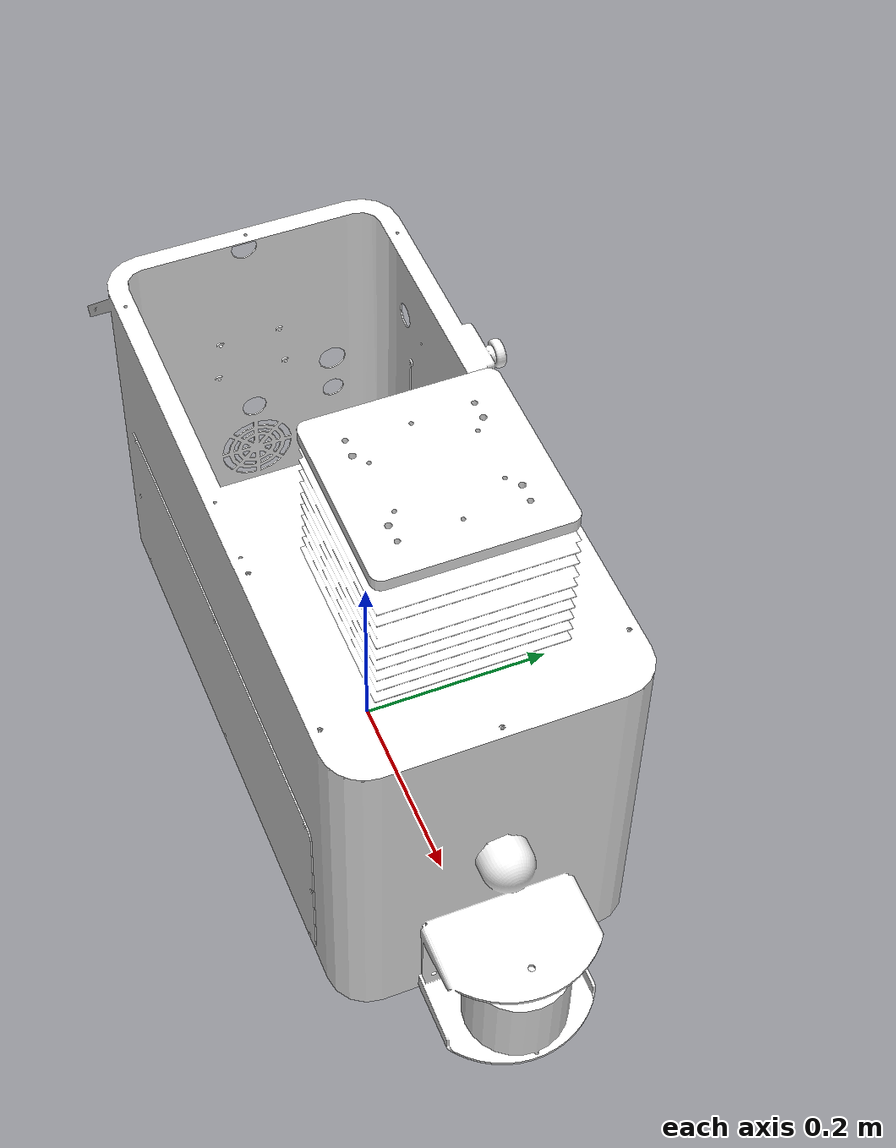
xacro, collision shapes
<?xml version="1.0" encoding="utf-8"?>
<robot name="ranger_xarm6_base" xmlns:xacro="http://ros.org/wiki/xacro">
  <link
    name="box_link">
    <inertial>
      <origin
        xyz="0.017247 -0.0057664 0.13638"
        rpy="0 0 0" />
      <mass
        value="2.1688" />
      <inertia
        ixx="0.019403"
        ixy="-1.1237E-05"
        ixz="-0.00039599"
        iyy="0.066236"
        iyz="5.3962E-07"
        izz="0.078079" />
    </inertial>
    <visual>
      <origin
        xyz="0 0 0"
        rpy="0 0 0" />
      <geometry>
        <mesh
          filename="package://ranger_xarm_base/meshes/box_link.STL" />
      </geometry>
      <material
        name="">
        <color
          rgba="1 1 1 1" />
      </material>
    </visual>
    <collision>
      <origin
        xyz="0.0 0 0"
        rpy="0 0 0" />
      <geometry>
        <mesh filename="package://ranger_xarm_base/meshes/box_link.STL" />
      </geometry>
    </collision>
  </link>
  <link
    name="laser_Link">
    <inertial>
      <origin
        xyz="-0.00029458 -1.102E-05 0.035775"
        rpy="0 0 0" />
      <mass
        value="0.58508" />
      <inertia
        ixx="0.00062907"
        ixy="-3.4247E-08"
        ixz="6.994E-08"
        iyy="0.00063026"
        iyz="-4.8147E-08"
        izz="0.00074925" />
    </inertial>
    <visual>
      <origin
        xyz="0 0 0"
        rpy="0 0 0" />
      <geometry>
        <mesh
          filename="package://ranger_xarm_base/meshes/laser_Link.STL" />
      </geometry>
      <material
        name="">
        <color
          rgba="1 1 1 1" />
      </material>
    </visual>
    <collision>
      <origin
        xyz="0 0 0.04"
        rpy="0 0 0" />
      <geometry>
        <cylinder length="0.09" radius="0.05"/>
      </geometry>
    </collision>
  </link>
  <joint
    name="laser_joint"
    type="fixed">
    <origin
      xyz="0.37655 2.1023E-05 0.02"
      rpy="0 0 0" />
    <parent
      link="box_link" />
    <child
      link="laser_Link" />
    <axis
      xyz="0 0 0" />
  </joint>

  <link
    name="lifting_link">
    <inertial>
      <origin
        xyz="0.17383 0.0039882 0.28986"
        rpy="0 0 0" />
      <mass
        value="4.4737" />
      <inertia
        ixx="0.05035"
        ixy="-3.7408E-07"
        ixz="-0.00011997"
        iyy="0.050518"
        iyz="-9.6114E-07"
        izz="0.023585" />
    </inertial>
    <visual>
      <origin
        xyz="-0.175 0 -0.025"
        rpy="0 0 0" />
      <geometry>
        <mesh
          filename="package://c1997/meshes/lifting_link.STL" />
      </geometry>
      <material
        name="">
        <color
          rgba="1 1 1 1" />
      </material>
    </visual>
    <collision>
      <origin
        xyz="-0.175 0 -0.025"
        rpy="0 0 0" />
      <geometry>
        <mesh
          filename="package://c1997/meshes/lifting_link.STL" />
      </geometry>
    </collision>
  </link>
  <joint
    name="lifting_joint"
    type="fixed">
    <origin
      xyz="0.175 0 0.025"
      rpy="0 0 0" />
    <parent
      link="box_link" />
    <child
      link="lifting_link" />
    <axis
      xyz="0 0 0" />
  </joint>

</robot>
